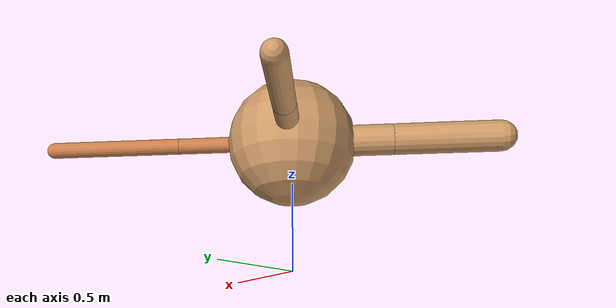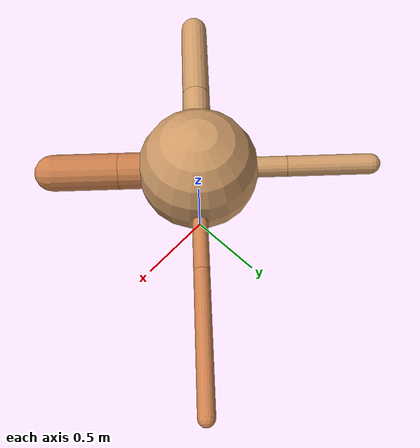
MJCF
<?xml version="1.0" ?>
<mujoco model="ant">

	<compiler angle="degree" coordinate="local" inertiafromgeom="true"/>

	<option integrator="RK4" timestep="0.01"/>

	<custom>

		<numeric data="0.0 0.0 0.55 1.0 0.0 0.0 0.0 0.0 1.0 0.0 -1.0 0.0 -1.0 0.0 1.0" name="init_qpos"/>

	</custom>

	<default>

		<joint armature="1" damping="1" limited="true"/>

		<geom conaffinity="0" condim="3" density="5.0" friction="1.5 0.1 0.1" margin="0.01" rgba="0.8 0.6 0.4 1"/>

	</default>

	<worldbody>

		<body name="torso" pos="0 0 0.75">

			<geom name="torso_geom" pos="0 0 0" size="0.3697006322955191" type="sphere"/>

			<!--joint armature="0" damping="0" limited="false" margin="0.01" name="root" pos="0 0 0" type="free"/-->

			<body name="front_left_leg" pos="0 0 0">

				<geom fromto="0 0 0 0.2 0.2 0" name="aux_1_geom" size="0.04638886188164704" type="capsule" rgba=".8 .5 .3 1"/>

				<body name="aux_1" pos="0.2 0.2 0">

					<joint axis="0 0 1" name="hip_1" pos="0.0 0.0 0.0" range="-40 40" type="hinge"/>

					<geom fromto="0 0 0 0.2689949940255188 0.2689949940255188 0" name="left_leg_geom" size="0.04638886188164704" type="capsule" rgba=".8 .5 .3 1"/>

					<body pos="0.2689949940255188 0.2689949940255188 0" name="front_left_foot">

						<joint axis="-1 1 0" name="ankle_1" pos="0.0 0.0 0.0" range="30 100" type="hinge"/>

						<geom fromto="0 0 0 0.5379899880510376 0.5379899880510376 0" name="left_ankle_geom" size="0.04638886188164704" type="capsule" rgba=".8 .5 .3 1"/>

					</body>

				</body>

			</body>

			<body name="front_right_leg" pos="0 0 0">

				<geom fromto="0 0 0 -0.2 0.2 0" name="aux_2_geom" size="0.06388264694134727" type="capsule"/>

				<body name="aux_2" pos="-0.2 0.2 0">

					<joint axis="0 0 1" name="hip_2" pos="0.0 0.0 0.0" range="-40 40" type="hinge"/>

					<geom fromto="0 0 0 -0.18234084528652486 0.18234084528652486 0" name="right_leg_geom" size="0.06388264694134727" type="capsule"/>

					<body pos="-0.18234084528652486 0.18234084528652486 0" name="front_right_foot">

						<joint axis="1 1 0" name="ankle_2" pos="0.0 0.0 0.0" range="-100 -30" type="hinge"/>

						<geom fromto="0 0 0 -0.3646816905730497 0.3646816905730497 0" name="right_ankle_geom" size="0.06388264694134727" type="capsule"/>

					</body>

				</body>

			</body>

			<body name="left_back_leg" pos="0 0 0">

				<geom fromto="0 0 0 -0.2 -0.2 0" name="aux_3_geom" size="0.09005190143633299" type="capsule"/>

				<body name="aux_3" pos="-0.2 -0.2 0">

					<joint axis="0 0 1" name="hip_3" pos="0.0 0.0 0.0" range="-40 40" type="hinge"/>

					<geom fromto="0 0 0 -0.21232378986154413 -0.21232378986154413 0" name="back_leg_geom" size="0.09005190143633299" type="capsule"/>

					<body pos="-0.21232378986154413 -0.21232378986154413 0" name="left_back_foot">

						<joint axis="-1 1 0" name="ankle_3" pos="0.0 0.0 0.0" range="-100 -30" type="hinge"/>

						<geom fromto="0 0 0 -0.42464757972308825 -0.42464757972308825 0" name="third_ankle_geom" size="0.09005190143633299" type="capsule"/>

					</body>

				</body>

			</body>

			<body name="right_back_leg" pos="0 0 0">

				<geom fromto="0 0 0 0.2 -0.2 0" name="aux_4_geom" size="0.11213989726396756" type="capsule" rgba=".8 .5 .3 1"/>

				<body name="aux_4" pos="0.2 -0.2 0">

					<joint axis="0 0 1" name="hip_4" pos="0.0 0.0 0.0" range="-40 40" type="hinge"/>

					<geom fromto="0 0 0 0.1417385218988792 -0.1417385218988792 0" name="rightback_leg_geom" size="0.11213989726396756" type="capsule" rgba=".8 .5 .3 1"/>

					<body pos="0.1417385218988792 -0.1417385218988792 0" name="right_back_foot">

						<joint axis="1 1 0" name="ankle_4" pos="0.0 0.0 0.0" range="30 100" type="hinge"/>

						<geom fromto="0 0 0 0.2834770437977584 -0.2834770437977584 0" name="fourth_ankle_geom" size="0.11213989726396756" type="capsule" rgba=".8 .5 .3 1"/>

					</body>

				</body>

			</body>

		</body>

	</worldbody>

	<actuator>

		<motor ctrllimited="true" ctrlrange="-1.0 1.0" joint="hip_4" gear="150"/>

		<motor ctrllimited="true" ctrlrange="-1.0 1.0" joint="ankle_4" gear="150"/>

		<motor ctrllimited="true" ctrlrange="-1.0 1.0" joint="hip_1" gear="150"/>

		<motor ctrllimited="true" ctrlrange="-1.0 1.0" joint="ankle_1" gear="150"/>

		<motor ctrllimited="true" ctrlrange="-1.0 1.0" joint="hip_2" gear="150"/>

		<motor ctrllimited="true" ctrlrange="-1.0 1.0" joint="ankle_2" gear="150"/>

		<motor ctrllimited="true" ctrlrange="-1.0 1.0" joint="hip_3" gear="150"/>

		<motor ctrllimited="true" ctrlrange="-1.0 1.0" joint="ankle_3" gear="150"/>

	</actuator>

</mujoco>
